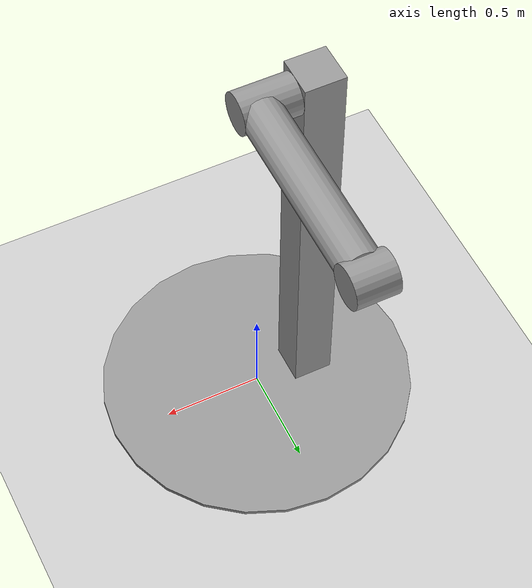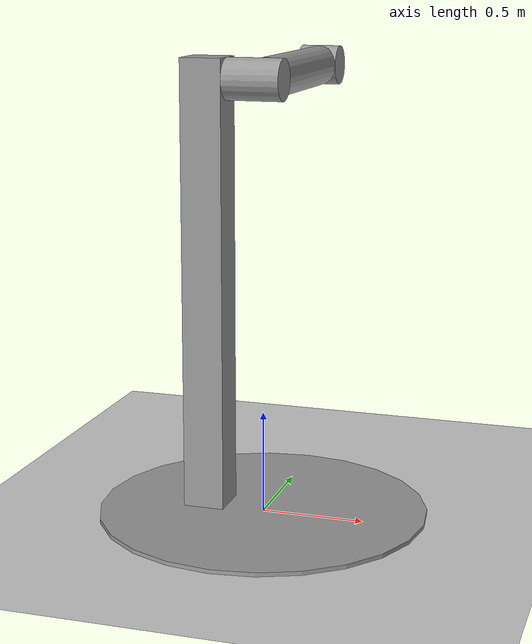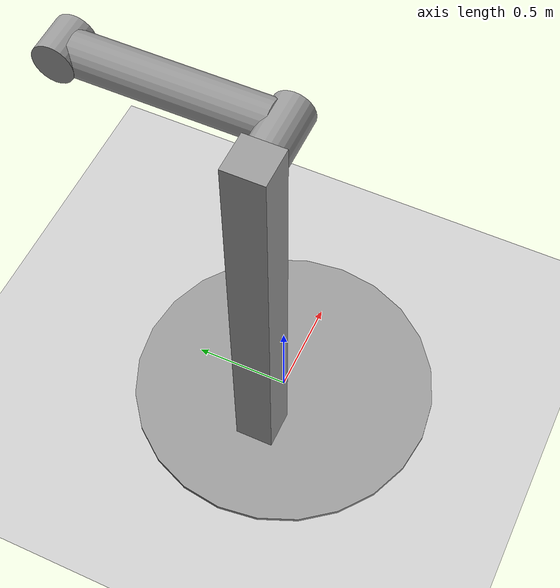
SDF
<?xml version="1.0" ?>
<sdf version="1.5">
<world name="default">
  <include>
    <uri>model://ground_plane</uri>
  </include>
  <include>
    <uri>model://sun</uri>
  </include>
  <!-- Based on https://bitbucket.org/osrf/gazebo_models/src/default/double_pendulum_with_base/model.sdf -->
  <model name="pendulum_with_base">
    <link name="base">
      <inertial>
        <mass>100</mass>
      </inertial>
      <visual name="vis_plate_on_ground">
        <pose>0 0 0.01 0 0 0</pose>
        <geometry>
          <cylinder>
            <radius>0.8</radius>
            <length>0.02</length>
          </cylinder>
        </geometry>
        <material>
          <script>
            <uri>file://media/materials/scripts/gazebo.material</uri>
            <name>Gazebo/Grey</name>
          </script>
        </material>
      </visual>
      <visual name="vis_pole">
        <pose>-0.275 0 1.1 0 0 0</pose>
        <geometry>
          <box>
            <size>0.2 0.2 2.2</size>
          </box>
        </geometry>
        <material>
          <script>
            <uri>file://media/materials/scripts/gazebo.material</uri>
            <name>Gazebo/Grey</name>
          </script>
        </material>
      </visual>
      <collision name="col_plate_on_ground">
        <pose>0 0 0.01 0 0 0</pose>
        <geometry>
          <cylinder>
            <radius>0.8</radius>
            <length>0.02</length>
          </cylinder>
        </geometry>
      </collision>
      <collision name="col_pole">
        <pose>-0.275 0 1.1 0 0 0</pose>
        <geometry>
          <box>
            <size>0.2 0.2 2.2</size>
          </box>
        </geometry>
      </collision>
    </link>
    <!-- upper link, length 1, IC -90 degrees -->
    <link name="upper_link">
      <pose>0 0 2.1 -1.5708 0 0</pose>
      <self_collide>0</self_collide>
      <inertial>
        <pose>0 0 0.5 0 0 0</pose>
        <inertia>
          <ixx>0.01</ixx>
          <ixy>0</ixy>
          <ixz>0</ixz>
          <iyy>0.01</iyy>
          <iyz>0</iyz>
          <izz>0.01</izz>
        </inertia>
        <mass>1.0</mass>
      </inertial>

      <visual name="vis_upper_joint">
        <pose>-0.05 0 0 0 1.5708 0</pose>
        <geometry>
          <cylinder>
            <radius>0.1</radius>
            <length>0.3</length>
          </cylinder>
        </geometry>
        <material>
          <script>
            <uri>file://media/materials/scripts/gazebo.material</uri>
            <name>Gazebo/Grey</name>
          </script>
        </material>
      </visual>
      <visual name="vis_lower_joint">
        <pose>0 0 1.0 0 1.5708 0</pose>
        <geometry>
          <cylinder>
            <radius>0.1</radius>
            <length>0.2</length>
          </cylinder>
        </geometry>
        <material>
          <script>
            <uri>file://media/materials/scripts/gazebo.material</uri>
            <name>Gazebo/Grey</name>
          </script>
        </material>
      </visual>
      <visual name="vis_cylinder">
        <pose>0 0 0.5 0 0 0</pose>
        <geometry>
          <cylinder>
            <radius>0.1</radius>
            <length>0.9</length>
          </cylinder>
        </geometry>
        <material>
          <script>
            <uri>file://media/materials/scripts/gazebo.material</uri>
            <name>Gazebo/Grey</name>
          </script>
        </material>
      </visual>
      <collision name="col_upper_joint">
        <pose>-0.05 0 0 0 1.5708 0</pose>
        <geometry>
          <cylinder>
            <radius>0.1</radius>
            <length>0.3</length>
          </cylinder>
        </geometry>
      </collision>
      <collision name="col_lower_joint">
        <pose>0 0 1.0 0 1.5708 0</pose>
        <geometry>
          <cylinder>
            <radius>0.1</radius>
            <length>0.2</length>
          </cylinder>
        </geometry>
      </collision>
      <collision name="col_cylinder">
        <pose>0 0 0.5 0 0 0</pose>
        <geometry>
          <cylinder>
            <radius>0.1</radius>
            <length>0.9</length>
          </cylinder>
        </geometry>
      </collision>
    </link>
    <!-- pin joint for upper link, at origin of upper link -->
    <joint name="upper_joint" type="revolute">
      <parent>base</parent>
      <child>upper_link</child>
      <axis>
        <xyz>1.0 0 0</xyz>
        <limit>
          <lower>-100</lower>
          <upper>100</upper>
          <effort>1000.0</effort>
          <velocity>50</velocity>
        </limit>
        <dynamics>
          <damping>4</damping>
          <friction>0</friction>
          <spring_reference>0</spring_reference>
          <spring_stiffness>0</spring_stiffness>
        </dynamics>
      </axis>

    </joint>
    <!-- gazebo_yarp_controlboard plugin -->
    <plugin name="controlboard" filename="libgazebo_yarp_controlboard.so">
        <!-- This is found because the source directory is passed to GAZEBO_MODEL_PATH -->
        <yarpConfigurationFile>model://RobotInterfaceControlBoardConfig.ini</yarpConfigurationFile>
        <initialConfiguration>0.0</initialConfiguration>
    </plugin>
    <!-- gazebo_yarp_robotinterface plugin -->
    <plugin name="robotinterface" filename="libgazebo_yarp_robotinterface.so">
        <yarpRobotInterfaceConfigurationFile>model://RobotInterfaceTest.xml</yarpRobotInterfaceConfigurationFile>
    </plugin>
  </model>
</world>
</sdf>
